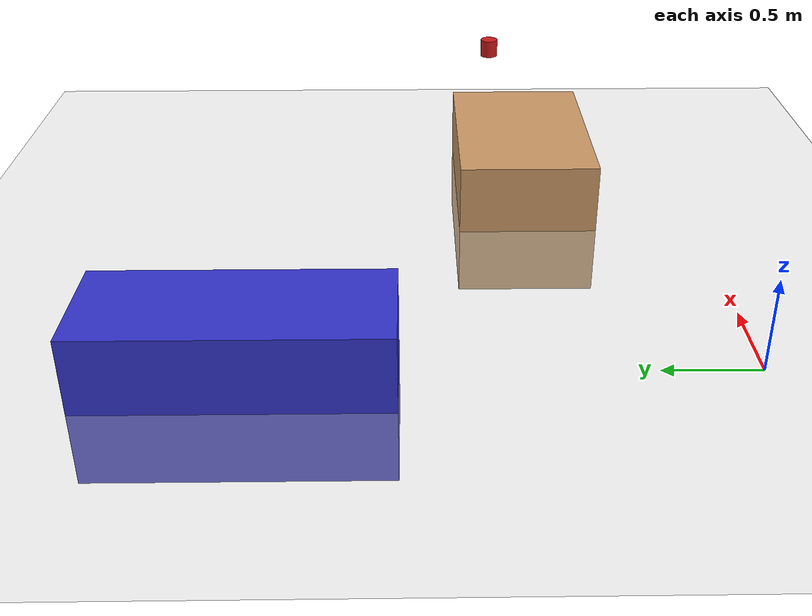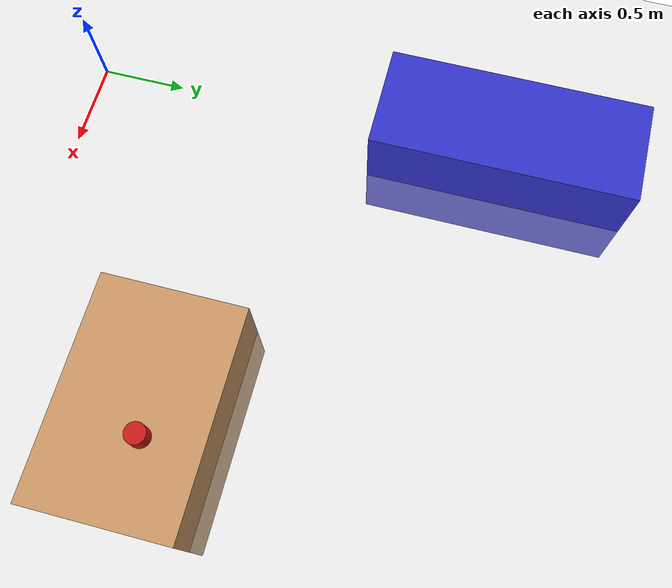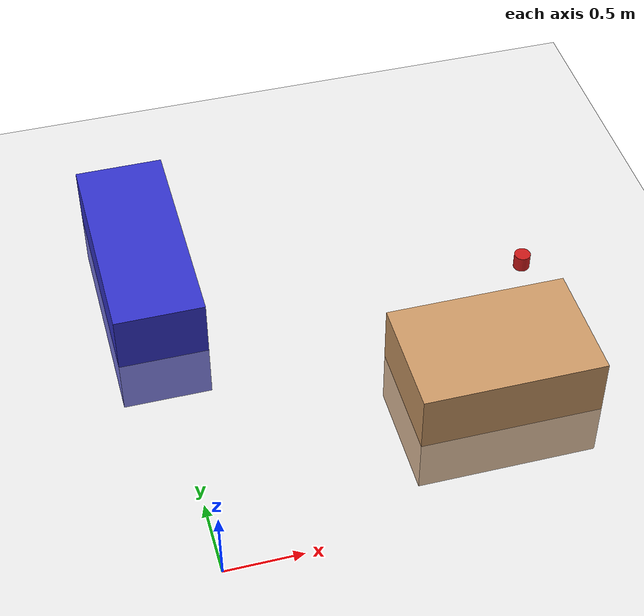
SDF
<?xml version="1.0" ?>
<sdf version="1.6">
  <world name="humanoid_world">
    <!-- Include the default model for sun and ground -->
    <include>
      <uri>model://ground_plane</uri>
    </include>

    <include>
      <uri>model://sun</uri>
    </include>

    <!-- Add some furniture for the humanoid to interact with -->
    <!-- Kitchen table -->
    <model name="kitchen_table">
      <pose>2 1 0 0 0 0</pose>
      <link name="link">
        <collision name="collision">
          <geometry>
            <box>
              <size>1.2 0.8 0.8</size>
            </box>
          </geometry>
        </collision>
        <visual name="visual">
          <geometry>
            <box>
              <size>1.2 0.8 0.8</size>
            </box>
          </geometry>
          <material>
            <ambient>0.8 0.6 0.4 1</ambient>
            <diffuse>0.8 0.6 0.4 1</diffuse>
          </material>
        </visual>
        <inertial>
          <mass>10</mass>
          <inertia>
            <ixx>1</ixx>
            <ixy>0</ixy>
            <ixz>0</ixz>
            <iyy>1</iyy>
            <iyz>0</iyz>
            <izz>1</izz>
          </inertia>
        </inertial>
      </link>
    </model>

    <!-- Living room couch -->
    <model name="couch">
      <pose>0 2.5 0 0 0 1.57</pose>
      <link name="link">
        <collision name="collision">
          <geometry>
            <box>
              <size>1.5 0.6 0.8</size>
            </box>
          </geometry>
        </collision>
        <visual name="visual">
          <geometry>
            <box>
              <size>1.5 0.6 0.8</size>
            </box>
          </geometry>
          <material>
            <ambient>0.2 0.2 0.8 1</ambient>
            <diffuse>0.2 0.2 0.8 1</diffuse>
          </material>
        </visual>
        <inertial>
          <mass>20</mass>
          <inertia>
            <ixx>1</ixx>
            <ixy>0</ixy>
            <ixz>0</ixz>
            <iyy>1</iyy>
            <iyz>0</iyz>
            <izz>1</izz>
          </inertia>
        </inertial>
      </link>
    </model>

    <!-- Some objects for the humanoid to interact with -->
    <!-- Red cup -->
    <model name="red_cup">
      <pose>2.2 1.2 0.85 0 0 0</pose>
      <link name="link">
        <collision name="collision">
          <geometry>
            <cylinder>
              <radius>0.05</radius>
              <length>0.1</length>
            </cylinder>
          </geometry>
        </collision>
        <visual name="visual">
          <geometry>
            <cylinder>
              <radius>0.05</radius>
              <length>0.1</length>
            </cylinder>
          </geometry>
          <material>
            <ambient>0.8 0.1 0.1 1</ambient>
            <diffuse>0.8 0.1 0.1 1</diffuse>
          </material>
        </visual>
        <inertial>
          <mass>0.1</mass>
          <inertia>
            <ixx>0.001</ixx>
            <ixy>0</ixy>
            <ixz>0</ixz>
            <iyy>0.001</iyy>
            <iyz>0</iyz>
            <izz>0.001</izz>
          </inertia>
        </inertial>
      </link>
    </model>

    <!-- Gazebo configuration -->
    <physics type="ode">
      <max_step_size>0.001</max_step_size>
      <real_time_factor>1</real_time_factor>
      <real_time_update_rate>1000</real_time_update_rate>
    </physics>

    <plugin name="ground_truth" filename="libgazebo_ros_p3d.so">
      <alwaysOn>true</alwaysOn>
      <updateRate>30</updateRate>
      <bodyName>base_link</bodyName>
      <topicName>ground_truth/state</topicName>
      <gaussianNoise>0.01</gaussianNoise>
      <frameName>map</frameName>
    </plugin>
  </world>
</sdf>
